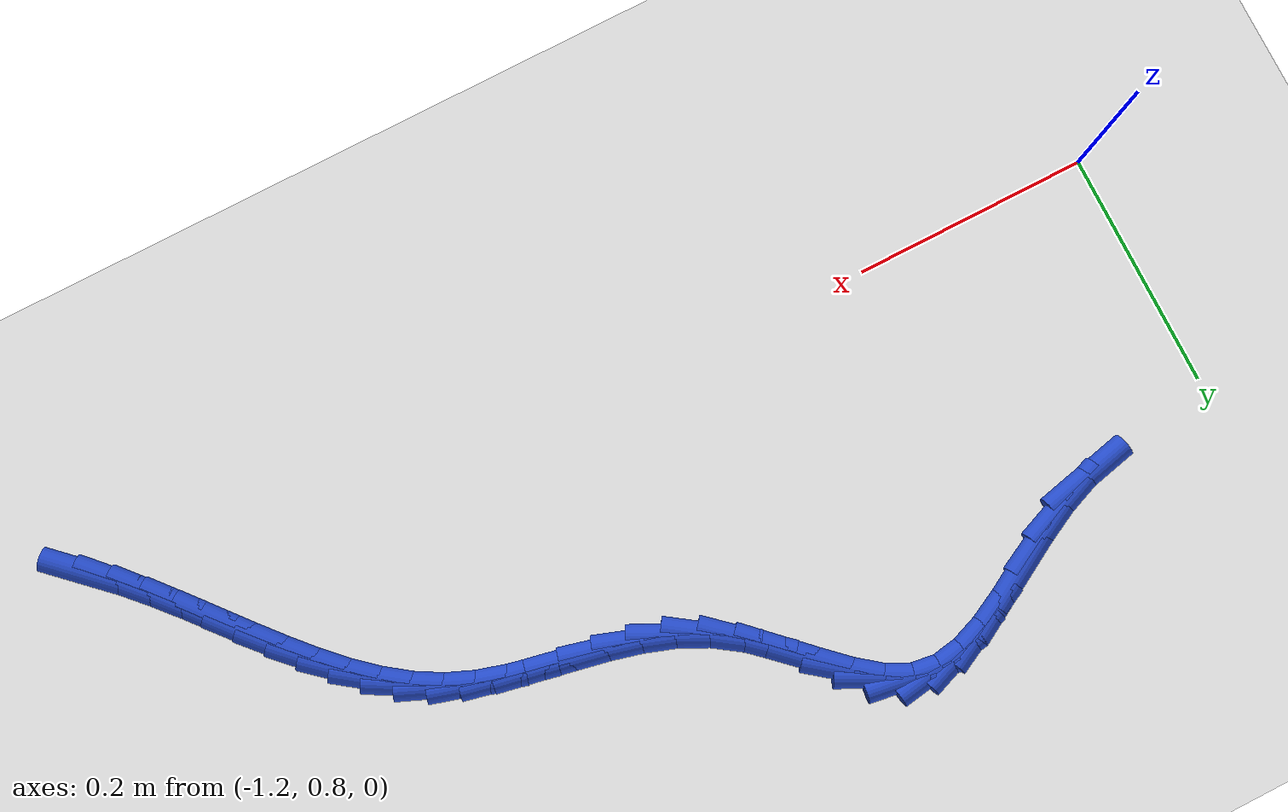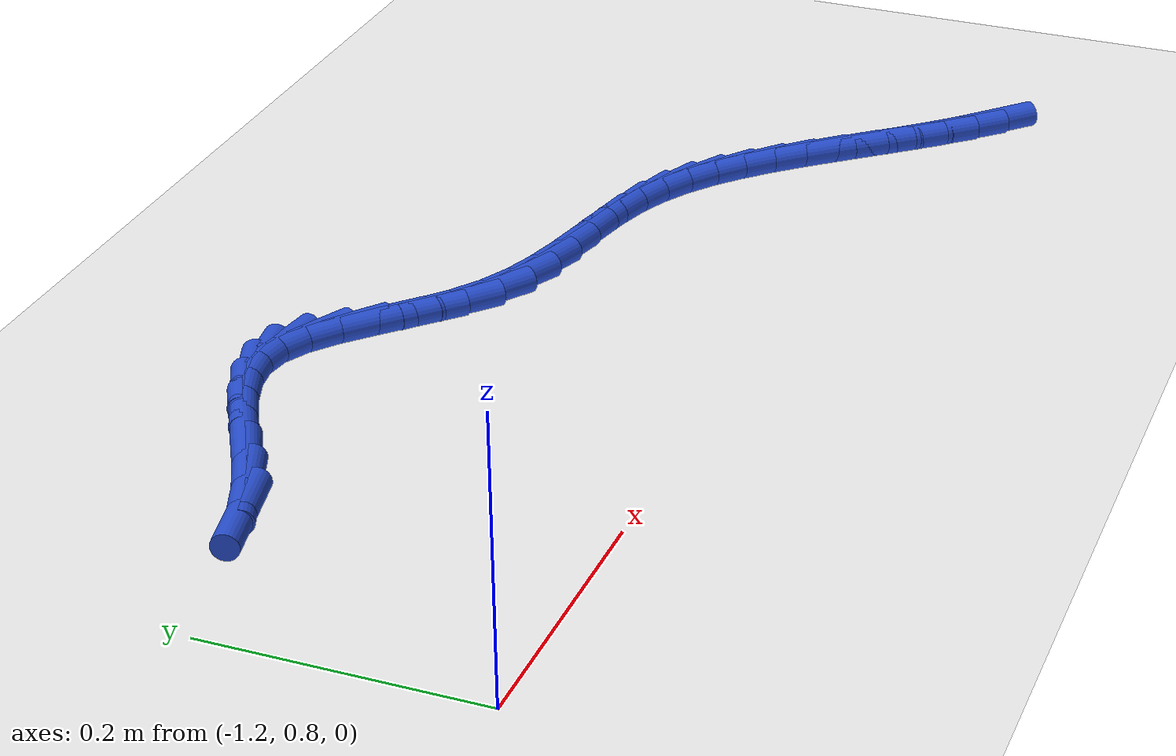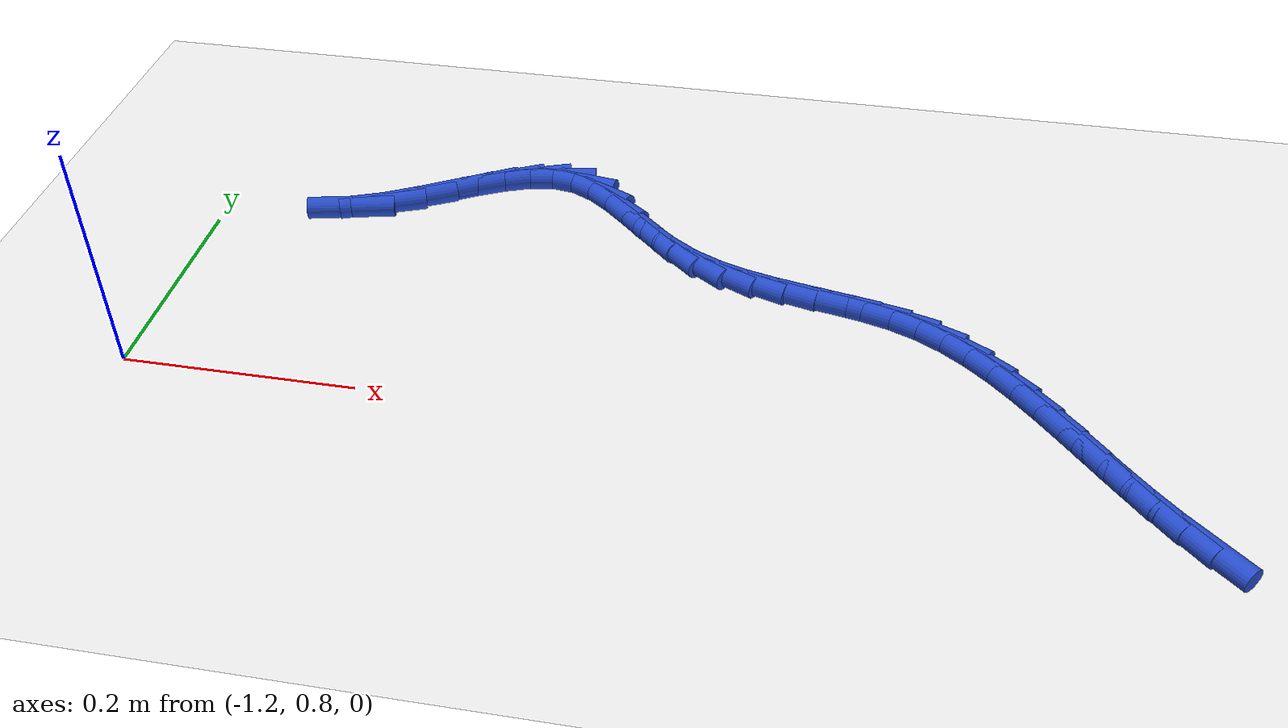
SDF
<sdf version="1.6">
 <world name="default">
  <model name="ground_plane">
   <static>1</static>
   <link name="link">
    <collision name="collision">
     <geometry><plane><normal>0 0 1</normal><size>100 100</size></plane></geometry>
     <surface><friction><ode><mu>100</mu><mu2>50</mu2></ode></friction></surface>
    </collision>
    <visual name="visual">
     <cast_shadows>0</cast_shadows>
     <geometry><plane><normal>0 0 1</normal><size>100 100</size></plane></geometry>
     <material>
      <script><uri>file://media/materials/scripts/gazebo.material</uri><name>Gazebo/WhiteGlow</name></script>
     </material>
    </visual>
   </link>
  </model>
  <model name="line">
   <link name="link_32">
    <pose>-0.3418527236576344 0.736745458982502 0.01 0 1.57 -0.7565763140817067</pose>
    <collision name="collision">
     <geometry><cylinder><radius>0.01</radius><length>0.08</length></cylinder></geometry>
    </collision>
    <visual name="visual">
     <material>
      <script><name>Gazebo/Blue</name><uri>file://media/materials/scripts/gazebo.material</uri></script>
     </material>
     <geometry><cylinder><radius>0.01</radius><length>0.08</length></cylinder></geometry>
    </visual>
   </link>
   <link name="link_33">
    <pose>-0.361907841367163 0.7556766091115201 0.01 0 1.57 -0.8105428518303144</pose>
    <collision name="collision">
     <geometry><cylinder><radius>0.01</radius><length>0.08</length></cylinder></geometry>
    </collision>
    <visual name="visual">
     <material>
      <script><name>Gazebo/Blue</name><uri>file://media/materials/scripts/gazebo.material</uri></script>
     </material>
     <geometry><cylinder><radius>0.01</radius><length>0.08</length></cylinder></geometry>
    </visual>
   </link>
   <link name="link_34">
    <pose>-0.38102841428922724 0.775783758828869 0.01 0 1.57 -0.8474976606497334</pose>
    <collision name="collision">
     <geometry><cylinder><radius>0.01</radius><length>0.08</length></cylinder></geometry>
    </collision>
    <visual name="visual">
     <material>
      <script><name>Gazebo/Blue</name><uri>file://media/materials/scripts/gazebo.material</uri></script>
     </material>
     <geometry><cylinder><radius>0.01</radius><length>0.08</length></cylinder></geometry>
    </visual>
   </link>
   <link name="link_35">
    <pose>-0.39946353166613874 0.7966634491829597 0.01 0 1.57 -0.8680179677769879</pose>
    <collision name="collision">
     <geometry><cylinder><radius>0.01</radius><length>0.08</length></cylinder></geometry>
    </collision>
    <visual name="visual">
     <material>
      <script><name>Gazebo/Blue</name><uri>file://media/materials/scripts/gazebo.material</uri></script>
     </material>
     <geometry><cylinder><radius>0.01</radius><length>0.08</length></cylinder></geometry>
    </visual>
   </link>
   <link name="link_36">
    <pose>-0.4174622827402099 0.8179122212222042 0.01 0 1.57 -0.8723747149108502</pose>
    <collision name="collision">
     <geometry><cylinder><radius>0.01</radius><length>0.08</length></cylinder></geometry>
    </collision>
    <visual name="visual">
     <material>
      <script><name>Gazebo/Blue</name><uri>file://media/materials/scripts/gazebo.material</uri></script>
     </material>
     <geometry><cylinder><radius>0.01</radius><length>0.08</length></cylinder></geometry>
    </visual>
   </link>
   <link name="link_37">
    <pose>-0.43527375675375213 0.8391266159950129 0.01 0 1.57 -0.8603746636498303</pose>
    <collision name="collision">
     <geometry><cylinder><radius>0.01</radius><length>0.08</length></cylinder></geometry>
    </collision>
    <visual name="visual">
     <material>
      <script><name>Gazebo/Blue</name><uri>file://media/materials/scripts/gazebo.material</uri></script>
     </material>
     <geometry><cylinder><radius>0.01</radius><length>0.08</length></cylinder></geometry>
    </visual>
   </link>
   <link name="link_38">
    <pose>-0.45314704294907737 0.8599031745497976 0.01 0 1.57 -0.8313024350996501</pose>
    <collision name="collision">
     <geometry><cylinder><radius>0.01</radius><length>0.08</length></cylinder></geometry>
    </collision>
    <visual name="visual">
     <material>
      <script><name>Gazebo/Blue</name><uri>file://media/materials/scripts/gazebo.material</uri></script>
     </material>
     <geometry><cylinder><radius>0.01</radius><length>0.08</length></cylinder></geometry>
    </visual>
   </link>
   <link name="link_39">
    <pose>-0.4713312305684973 0.8798384379349692 0.01 0 1.57 -0.7839644934886402</pose>
    <collision name="collision">
     <geometry><cylinder><radius>0.01</radius><length>0.08</length></cylinder></geometry>
    </collision>
    <visual name="visual">
     <material>
      <script><name>Gazebo/Blue</name><uri>file://media/materials/scripts/gazebo.material</uri></script>
     </material>
     <geometry><cylinder><radius>0.01</radius><length>0.08</length></cylinder></geometry>
    </visual>
   </link>
   <link name="link_40">
    <pose>-0.49007540885432366 0.8985289471989392 0.01 0 1.57 -0.7168916817004928</pose>
    <collision name="collision">
     <geometry><cylinder><radius>0.01</radius><length>0.08</length></cylinder></geometry>
    </collision>
    <visual name="visual">
     <material>
      <script><name>Gazebo/Blue</name><uri>file://media/materials/scripts/gazebo.material</uri></script>
     </material>
     <geometry><cylinder><radius>0.01</radius><length>0.08</length></cylinder></geometry>
    </visual>
   </link>
   <link name="link_41">
    <pose>-0.5096286670488686 0.9155712433901184 0.01 0 1.57 -0.6288119998419277</pose>
    <collision name="collision">
     <geometry><cylinder><radius>0.01</radius><length>0.08</length></cylinder></geometry>
    </collision>
    <visual name="visual">
     <material>
      <script><name>Gazebo/Blue</name><uri>file://media/materials/scripts/gazebo.material</uri></script>
     </material>
     <geometry><cylinder><radius>0.01</radius><length>0.08</length></cylinder></geometry>
    </visual>
   </link>
   <link name="link_42">
    <pose>-0.5302400943944439 0.9305618675569188 0.01 0 1.57 -0.5195081930052509</pose>
    <collision name="collision">
     <geometry><cylinder><radius>0.01</radius><length>0.08</length></cylinder></geometry>
    </collision>
    <visual name="visual">
     <material>
      <script><name>Gazebo/Blue</name><uri>file://media/materials/scripts/gazebo.material</uri></script>
     </material>
     <geometry><cylinder><radius>0.01</radius><length>0.08</length></cylinder></geometry>
    </visual>
   </link>
   <link name="link_43">
    <pose>-0.5521587801333612 0.9430973607477511 0.01 0 1.57 -0.3928359924762376</pose>
    <collision name="collision">
     <geometry><cylinder><radius>0.01</radius><length>0.08</length></cylinder></geometry>
    </collision>
    <visual name="visual">
     <material>
      <script><name>Gazebo/Blue</name><uri>file://media/materials/scripts/gazebo.material</uri></script>
     </material>
     <geometry><cylinder><radius>0.01</radius><length>0.08</length></cylinder></geometry>
    </visual>
   </link>
   <link name="link_44">
    <pose>-0.5756129374965655 0.9528161531042059 0.01 0 1.57 -0.2833658775620878</pose>
    <collision name="collision">
     <geometry><cylinder><radius>0.01</radius><length>0.08</length></cylinder></geometry>
    </collision>
    <visual name="visual">
     <material>
      <script><name>Gazebo/Blue</name><uri>file://media/materials/scripts/gazebo.material</uri></script>
     </material>
     <geometry><cylinder><radius>0.01</radius><length>0.08</length></cylinder></geometry>
    </visual>
   </link>
   <link name="link_45">
    <pose>-0.600481324925978 0.9600578788418842 0.01 0 1.57 -0.21629301591343814</pose>
    <collision name="collision">
     <geometry><cylinder><radius>0.01</radius><length>0.08</length></cylinder></geometry>
    </collision>
    <visual name="visual">
     <material>
      <script><name>Gazebo/Blue</name><uri>file://media/materials/scripts/gazebo.material</uri></script>
     </material>
     <geometry><cylinder><radius>0.01</radius><length>0.08</length></cylinder></geometry>
    </visual>
   </link>
   <link name="link_46">
    <pose>-0.6263533624763928 0.9657427487264656 0.01 0 1.57 -0.1891844893317673</pose>
    <collision name="collision">
     <geometry><cylinder><radius>0.01</radius><length>0.08</length></cylinder></geometry>
    </collision>
    <visual name="visual">
     <material>
      <script><name>Gazebo/Blue</name><uri>file://media/materials/scripts/gazebo.material</uri></script>
     </material>
     <geometry><cylinder><radius>0.01</radius><length>0.08</length></cylinder></geometry>
    </visual>
   </link>
   <link name="link_47">
    <pose>-0.6528097519474474 0.9708084672774063 0.01 0 1.57 -0.19956114438215225</pose>
    <collision name="collision">
     <geometry><cylinder><radius>0.01</radius><length>0.08</length></cylinder></geometry>
    </collision>
    <visual name="visual">
     <material>
      <script><name>Gazebo/Blue</name><uri>file://media/materials/scripts/gazebo.material</uri></script>
     </material>
     <geometry><cylinder><radius>0.01</radius><length>0.08</length></cylinder></geometry>
    </visual>
   </link>
   <link name="link_48">
    <pose>-0.6794311951387783 0.9761927390141613 0.01 0 1.57 -0.24671731298215</pose>
    <collision name="collision">
     <geometry><cylinder><radius>0.01</radius><length>0.08</length></cylinder></geometry>
    </collision>
    <visual name="visual">
     <material>
      <script><name>Gazebo/Blue</name><uri>file://media/materials/scripts/gazebo.material</uri></script>
     </material>
     <geometry><cylinder><radius>0.01</radius><length>0.08</length></cylinder></geometry>
    </visual>
   </link>
   <link name="link_49">
    <pose>-0.7057983938500223 0.982833268456186 0.01 0 1.57 -0.3311760406851753</pose>
    <collision name="collision">
     <geometry><cylinder><radius>0.01</radius><length>0.08</length></cylinder></geometry>
    </collision>
    <visual name="visual">
     <material>
      <script><name>Gazebo/Blue</name><uri>file://media/materials/scripts/gazebo.material</uri></script>
     </material>
     <geometry><cylinder><radius>0.01</radius><length>0.08</length></cylinder></geometry>
    </visual>
   </link>
   <link name="link_50">
    <pose>-0.7314920498808166 0.9916677601229367 0.01 0 1.57 -0.4527191165925859</pose>
    <collision name="collision">
     <geometry><cylinder><radius>0.01</radius><length>0.08</length></cylinder></geometry>
    </collision>
    <visual name="visual">
     <material>
      <script><name>Gazebo/Blue</name><uri>file://media/materials/scripts/gazebo.material</uri></script>
     </material>
     <geometry><cylinder><radius>0.01</radius><length>0.08</length></cylinder></geometry>
    </visual>
   </link>
   <link name="link_51">
    <pose>-0.7560928650307976 1.0036339185338679 0.01 0 1.57 -0.6033936116225007</pose>
    <collision name="collision">
     <geometry><cylinder><radius>0.01</radius><length>0.08</length></cylinder></geometry>
    </collision>
    <visual name="visual">
     <material>
      <script><name>Gazebo/Blue</name><uri>file://media/materials/scripts/gazebo.material</uri></script>
     </material>
     <geometry><cylinder><radius>0.01</radius><length>0.08</length></cylinder></geometry>
    </visual>
   </link>
   <link name="link_52">
    <pose>-0.7792114746429604 1.0195656549795429 0.01 0 1.57 -0.7210777675342803</pose>
    <collision name="collision">
     <geometry><cylinder><radius>0.01</radius><length>0.08</length></cylinder></geometry>
    </collision>
    <visual name="visual">
     <material>
      <script><name>Gazebo/Blue</name><uri>file://media/materials/scripts/gazebo.material</uri></script>
     </material>
     <geometry><cylinder><radius>0.01</radius><length>0.08</length></cylinder></geometry>
    </visual>
   </link>
   <link name="link_53">
    <pose>-0.800931448298232 1.0386570023364612 0.01 0 1.57 -0.7696232735204793</pose>
    <collision name="collision">
     <geometry><cylinder><radius>0.01</radius><length>0.08</length></cylinder></geometry>
    </collision>
    <visual name="visual">
     <material>
      <script><name>Gazebo/Blue</name><uri>file://media/materials/scripts/gazebo.material</uri></script>
     </material>
     <geometry><cylinder><radius>0.01</radius><length>0.08</length></cylinder></geometry>
    </visual>
   </link>
   <link name="link_54">
    <pose>-0.8217136684562714 1.0587936778728324 0.01 0 1.57 -0.752763194397208</pose>
    <collision name="collision">
     <geometry><cylinder><radius>0.01</radius><length>0.08</length></cylinder></geometry>
    </collision>
    <visual name="visual">
     <material>
      <script><name>Gazebo/Blue</name><uri>file://media/materials/scripts/gazebo.material</uri></script>
     </material>
     <geometry><cylinder><radius>0.01</radius><length>0.08</length></cylinder></geometry>
    </visual>
   </link>
   <link name="link_55">
    <pose>-0.8420295204466621 1.077824980623012 0.01 0 1.57 -0.660125985846758</pose>
    <collision name="collision">
     <geometry><cylinder><radius>0.01</radius><length>0.08</length></cylinder></geometry>
    </collision>
    <visual name="visual">
     <material>
      <script><name>Gazebo/Blue</name><uri>file://media/materials/scripts/gazebo.material</uri></script>
     </material>
     <geometry><cylinder><radius>0.01</radius><length>0.08</length></cylinder></geometry>
    </visual>
   </link>
   <link name="link_56">
    <pose>-0.8623503895989879 1.0936002096213562 0.01 0 1.57 -0.46248595440453766</pose>
    <collision name="collision">
     <geometry><cylinder><radius>0.01</radius><length>0.08</length></cylinder></geometry>
    </collision>
    <visual name="visual">
     <material>
      <script><name>Gazebo/Blue</name><uri>file://media/materials/scripts/gazebo.material</uri></script>
     </material>
     <geometry><cylinder><radius>0.01</radius><length>0.08</length></cylinder></geometry>
    </visual>
   </link>
   <link name="link_57">
    <pose>-0.8831476612428316 1.1039686639022213 0.01 0 1.57 -0.14202022993658955</pose>
    <collision name="collision">
     <geometry><cylinder><radius>0.01</radius><length>0.08</length></cylinder></geometry>
    </collision>
    <visual name="visual">
     <material>
      <script><name>Gazebo/Blue</name><uri>file://media/materials/scripts/gazebo.material</uri></script>
     </material>
     <geometry><cylinder><radius>0.01</radius><length>0.08</length></cylinder></geometry>
    </visual>
   </link>
   <link name="link_58">
    <pose>-0.9048495323779722 1.1070716589442244 0.01 0 1.57 0.16095837502814797</pose>
    <collision name="collision">
     <geometry><cylinder><radius>0.01</radius><length>0.08</length></cylinder></geometry>
    </collision>
    <visual name="visual">
     <material>
      <script><name>Gazebo/Blue</name><uri>file://media/materials/scripts/gazebo.material</uri></script>
     </material>
     <geometry><cylinder><radius>0.01</radius><length>0.08</length></cylinder></geometry>
    </visual>
   </link>
   <link name="link_59">
    <pose>-0.927538520901255 1.1033878078929253 0.01 0 1.57 0.35961795064695906</pose>
    <collision name="collision">
     <geometry><cylinder><radius>0.01</radius><length>0.08</length></cylinder></geometry>
    </collision>
    <visual name="visual">
     <material>
      <script><name>Gazebo/Blue</name><uri>file://media/materials/scripts/gazebo.material</uri></script>
     </material>
     <geometry><cylinder><radius>0.01</radius><length>0.08</length></cylinder></geometry>
    </visual>
   </link>
   <link name="link_60">
    <pose>-0.9511312012778204 1.0945177448447618 0.01 0 1.57 0.47156598986149795</pose>
    <collision name="collision">
     <geometry><cylinder><radius>0.01</radius><length>0.08</length></cylinder></geometry>
    </collision>
    <visual name="visual">
     <material>
      <script><name>Gazebo/Blue</name><uri>file://media/materials/scripts/gazebo.material</uri></script>
     </material>
     <geometry><cylinder><radius>0.01</radius><length>0.08</length></cylinder></geometry>
    </visual>
   </link>
   <link name="link_61">
    <pose>-0.9755430981094085 1.082069202512354 0.01 0 1.57 0.5206371930552571</pose>
    <collision name="collision">
     <geometry><cylinder><radius>0.01</radius><length>0.08</length></cylinder></geometry>
    </collision>
    <visual name="visual">
     <material>
      <script><name>Gazebo/Blue</name><uri>file://media/materials/scripts/gazebo.material</uri></script>
     </material>
     <geometry><cylinder><radius>0.01</radius><length>0.08</length></cylinder></geometry>
    </visual>
   </link>
   <link name="link_62">
    <pose>-1.0006897359977607 1.0676499136083235 0.01 0 1.57 0.5203496851456962</pose>
    <collision name="collision">
     <geometry><cylinder><radius>0.01</radius><length>0.08</length></cylinder></geometry>
    </collision>
    <visual name="visual">
     <material>
      <script><name>Gazebo/Blue</name><uri>file://media/materials/scripts/gazebo.material</uri></script>
     </material>
     <geometry><cylinder><radius>0.01</radius><length>0.08</length></cylinder></geometry>
    </visual>
   </link>
   <link name="link_63">
    <pose>-1.0264866395446173 1.0528676108452903 0.01 0 1.57 0.47439941413155706</pose>
    <collision name="collision">
     <geometry><cylinder><radius>0.01</radius><length>0.08</length></cylinder></geometry>
    </collision>
    <visual name="visual">
     <material>
      <script><name>Gazebo/Blue</name><uri>file://media/materials/scripts/gazebo.material</uri></script>
     </material>
     <geometry><cylinder><radius>0.01</radius><length>0.08</length></cylinder></geometry>
    </visual>
   </link>
   <link name="link_64">
    <pose>-1.052849333351719 1.0393300269358752 0.01 0 1.57 0.3788201835636291</pose>
    <collision name="collision">
     <geometry><cylinder><radius>0.01</radius><length>0.08</length></cylinder></geometry>
    </collision>
    <visual name="visual">
     <material>
      <script><name>Gazebo/Blue</name><uri>file://media/materials/scripts/gazebo.material</uri></script>
     </material>
     <geometry><cylinder><radius>0.01</radius><length>0.08</length></cylinder></geometry>
    </visual>
   </link>
   <link name="link_65">
    <pose>-1.0796933420208068 1.0286448945926994 0.01 0 1.57 0.22465773814397805</pose>
    <collision name="collision">
     <geometry><cylinder><radius>0.01</radius><length>0.08</length></cylinder></geometry>
    </collision>
    <visual name="visual">
     <material>
      <script><name>Gazebo/Blue</name><uri>file://media/materials/scripts/gazebo.material</uri></script>
     </material>
     <geometry><cylinder><radius>0.01</radius><length>0.08</length></cylinder></geometry>
    </visual>
   </link>
  </model>
 </world>
</sdf>
